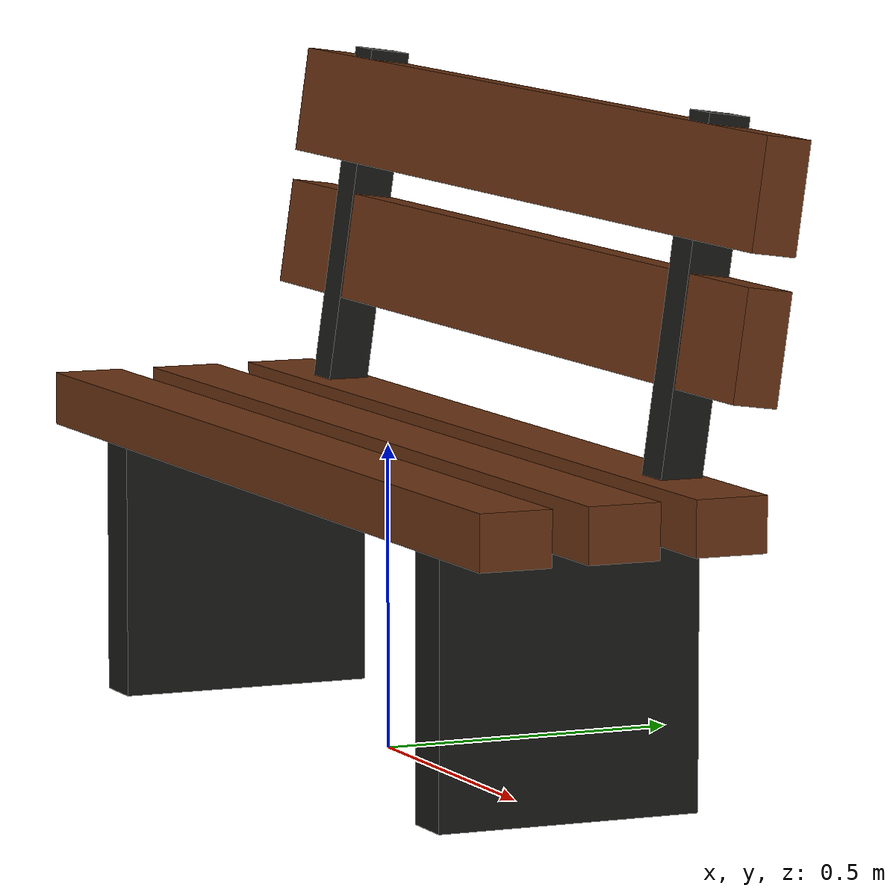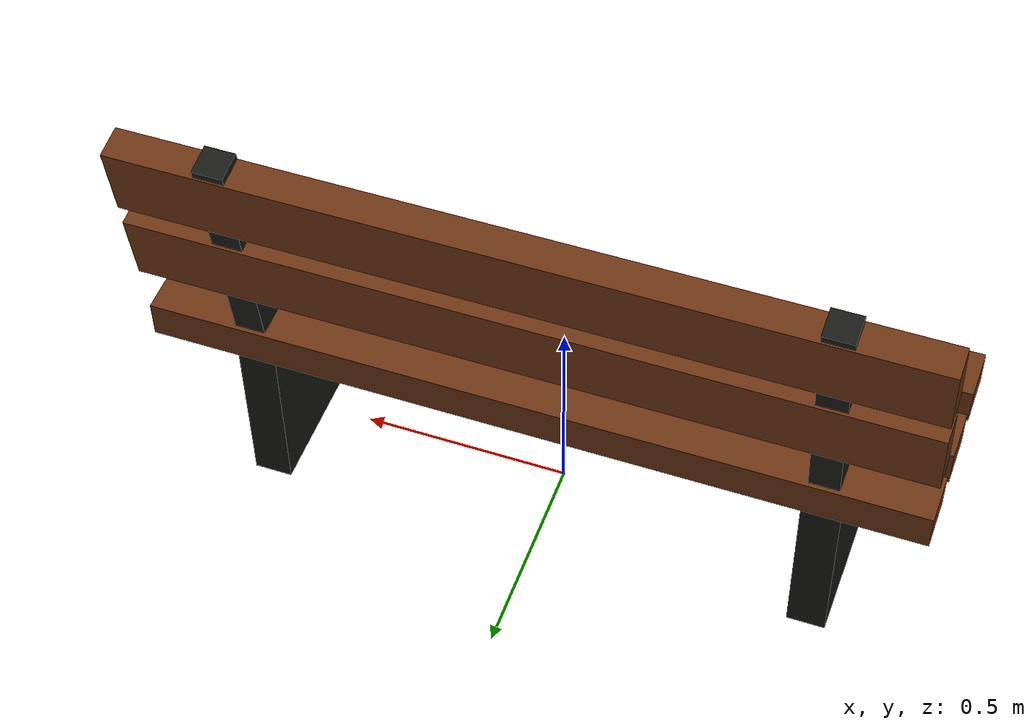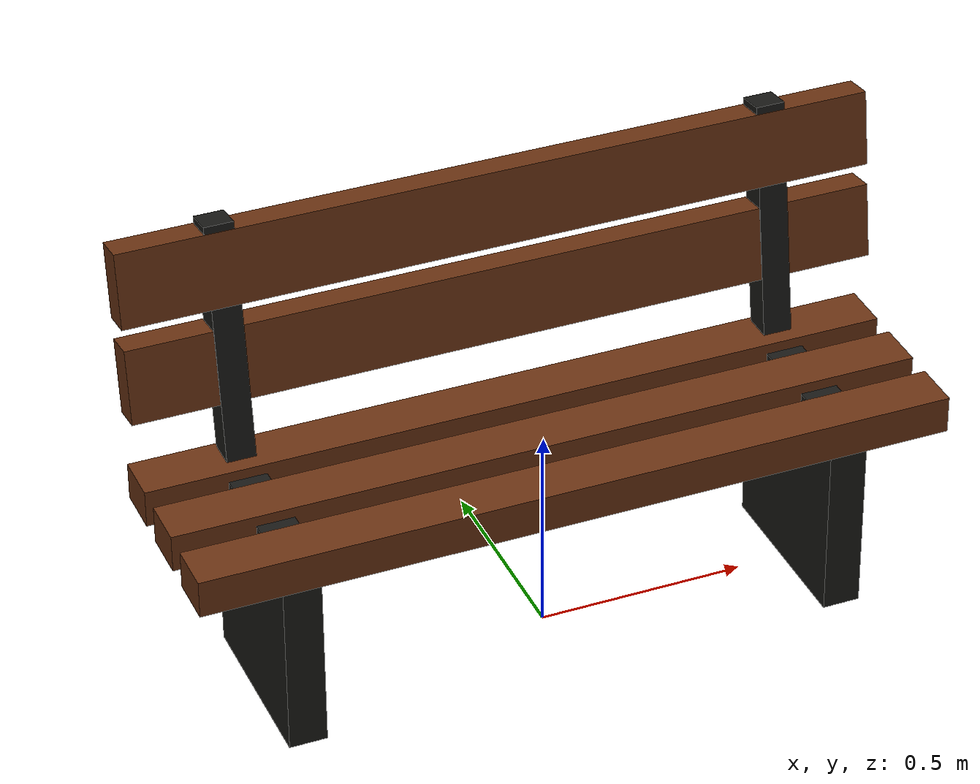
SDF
<?xml version="1.0"?>
<sdf version="1.9">
  <model name="surf_bench">
    <static>true</static>
    <link name="bench">
      <!-- The seat and back collisions are continuous so mobile robots cannot
           become caught in the small visual gaps between timber slats. -->
      <collision name="seat_collision">
        <pose>0 0 0.48 0 0 0</pose>
        <geometry>
          <box>
            <size>1.80 0.50 0.10</size>
          </box>
        </geometry>
      </collision>
      <collision name="back_collision">
        <pose>0 0.25 0.84 -0.14 0 0</pose>
        <geometry>
          <box>
            <size>1.80 0.10 0.55</size>
          </box>
        </geometry>
      </collision>
      <collision name="left_leg_collision">
        <pose>-0.66 0 0.25 0 0 0</pose>
        <geometry>
          <box>
            <size>0.10 0.46 0.50</size>
          </box>
        </geometry>
      </collision>
      <collision name="right_leg_collision">
        <pose>0.66 0 0.25 0 0 0</pose>
        <geometry>
          <box>
            <size>0.10 0.46 0.50</size>
          </box>
        </geometry>
      </collision>

      <visual name="seat_front_slat">
        <pose>0 -0.18 0.48 0 0 0</pose>
        <geometry><box><size>1.80 0.12 0.09</size></box></geometry>
        <material>
          <ambient>0.28 0.12 0.045 1</ambient>
          <diffuse>0.42 0.20 0.075 1</diffuse>
          <specular>0.05 0.04 0.03 1</specular>
        </material>
      </visual>
      <visual name="seat_center_slat">
        <pose>0 0 0.48 0 0 0</pose>
        <geometry><box><size>1.80 0.12 0.09</size></box></geometry>
        <material>
          <ambient>0.28 0.12 0.045 1</ambient>
          <diffuse>0.42 0.20 0.075 1</diffuse>
          <specular>0.05 0.04 0.03 1</specular>
        </material>
      </visual>
      <visual name="seat_rear_slat">
        <pose>0 0.18 0.48 0 0 0</pose>
        <geometry><box><size>1.80 0.12 0.09</size></box></geometry>
        <material>
          <ambient>0.28 0.12 0.045 1</ambient>
          <diffuse>0.42 0.20 0.075 1</diffuse>
          <specular>0.05 0.04 0.03 1</specular>
        </material>
      </visual>
      <visual name="back_lower_slat">
        <pose>0 0.23 0.75 -0.14 0 0</pose>
        <geometry><box><size>1.80 0.075 0.18</size></box></geometry>
        <material>
          <ambient>0.28 0.12 0.045 1</ambient>
          <diffuse>0.42 0.20 0.075 1</diffuse>
          <specular>0.05 0.04 0.03 1</specular>
        </material>
      </visual>
      <visual name="back_upper_slat">
        <pose>0 0.26 0.98 -0.14 0 0</pose>
        <geometry><box><size>1.80 0.075 0.18</size></box></geometry>
        <material>
          <ambient>0.28 0.12 0.045 1</ambient>
          <diffuse>0.42 0.20 0.075 1</diffuse>
          <specular>0.05 0.04 0.03 1</specular>
        </material>
      </visual>

      <visual name="left_leg_visual">
        <pose>-0.66 0 0.25 0 0 0</pose>
        <geometry><box><size>0.09 0.44 0.50</size></box></geometry>
        <material>
          <ambient>0.055 0.055 0.050 1</ambient>
          <diffuse>0.095 0.095 0.085 1</diffuse>
          <specular>0.28 0.28 0.25 1</specular>
        </material>
      </visual>
      <visual name="right_leg_visual">
        <pose>0.66 0 0.25 0 0 0</pose>
        <geometry><box><size>0.09 0.44 0.50</size></box></geometry>
        <material>
          <ambient>0.055 0.055 0.050 1</ambient>
          <diffuse>0.095 0.095 0.085 1</diffuse>
          <specular>0.28 0.28 0.25 1</specular>
        </material>
      </visual>
      <visual name="left_back_support">
        <pose>-0.66 0.23 0.78 -0.14 0 0</pose>
        <geometry><box><size>0.07 0.07 0.62</size></box></geometry>
        <material>
          <ambient>0.055 0.055 0.050 1</ambient>
          <diffuse>0.095 0.095 0.085 1</diffuse>
          <specular>0.28 0.28 0.25 1</specular>
        </material>
      </visual>
      <visual name="right_back_support">
        <pose>0.66 0.23 0.78 -0.14 0 0</pose>
        <geometry><box><size>0.07 0.07 0.62</size></box></geometry>
        <material>
          <ambient>0.055 0.055 0.050 1</ambient>
          <diffuse>0.095 0.095 0.085 1</diffuse>
          <specular>0.28 0.28 0.25 1</specular>
        </material>
      </visual>
    </link>
  </model>
</sdf>
